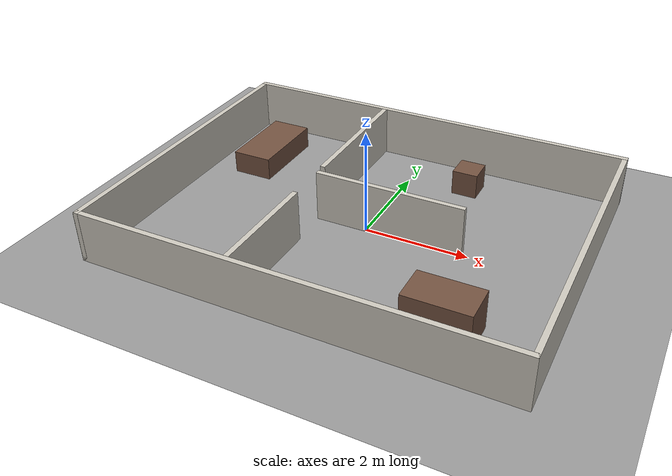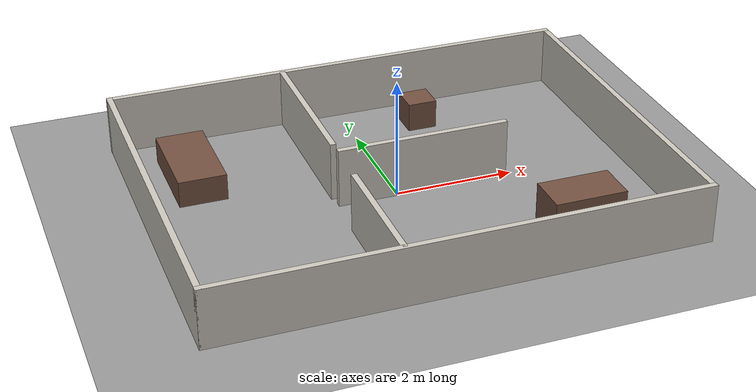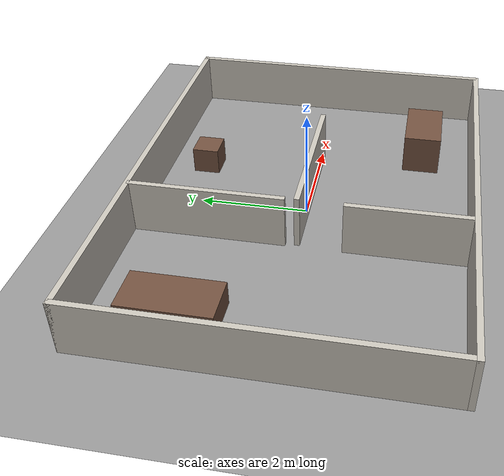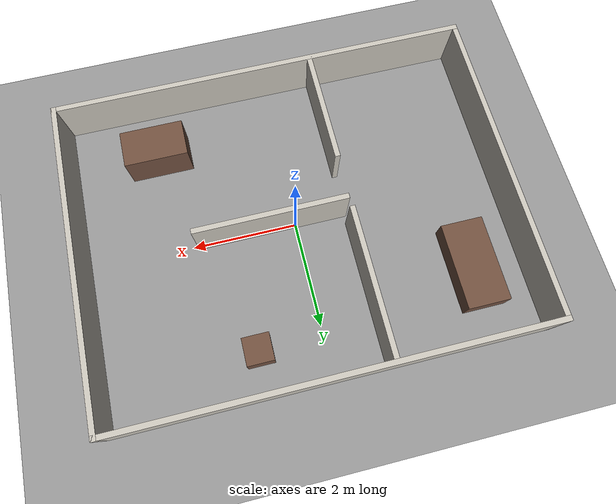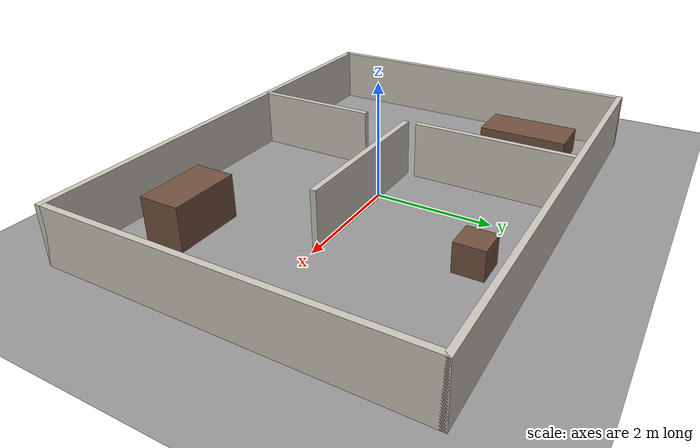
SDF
<?xml version="1.0"?>
<!-- A small two-room apartment, big enough that SLAM has to close a loop.
     Robot spawns in the lower-left room; the doorway is at about (-1, -0.3). -->
<sdf version="1.9">
  <world name="house">
    <physics name="4ms" type="ignored">
      <max_step_size>0.004</max_step_size>
      <real_time_factor>1.0</real_time_factor>
    </physics>
    <plugin filename="gz-sim-physics-system" name="gz::sim::systems::Physics"/>
    <plugin filename="gz-sim-user-commands-system" name="gz::sim::systems::UserCommands"/>
    <plugin filename="gz-sim-scene-broadcaster-system" name="gz::sim::systems::SceneBroadcaster"/>
    <plugin filename="gz-sim-sensors-system" name="gz::sim::systems::Sensors">
      <render_engine>ogre2</render_engine>
    </plugin>
    <plugin filename="gz-sim-imu-system" name="gz::sim::systems::Imu"/>

    <light type="directional" name="sun">
      <cast_shadows>true</cast_shadows>
      <pose>0 0 10 0 0 0</pose>
      <diffuse>0.9 0.9 0.9 1</diffuse>
      <specular>0.2 0.2 0.2 1</specular>
      <direction>-0.5 0.3 -0.9</direction>
    </light>

    <model name="floor">
      <static>true</static>
      <link name="link">
        <collision name="c"><geometry><plane><normal>0 0 1</normal><size>20 20</size></plane></geometry></collision>
        <visual name="v">
          <geometry><plane><normal>0 0 1</normal><size>20 20</size></plane></geometry>
          <material><ambient>0.5 0.5 0.5 1</ambient><diffuse>0.6 0.6 0.6 1</diffuse></material>
        </visual>
      </link>
    </model>

    <model name="house">
      <static>true</static>
      <link name="wall_s">
        <pose>0.0 -3.0 0.500 0 0 0</pose>
        <collision name="c"><geometry><box><size>8.1 0.1 1.0</size></box></geometry></collision>
        <visual name="v">
          <geometry><box><size>8.1 0.1 1.0</size></box></geometry>
          <material><ambient>0.8 0.78 0.74 1</ambient><diffuse>0.8 0.78 0.74 1</diffuse></material>
        </visual>
      </link>
      <link name="wall_n">
        <pose>0.0 3.0 0.500 0 0 0</pose>
        <collision name="c"><geometry><box><size>8.1 0.1 1.0</size></box></geometry></collision>
        <visual name="v">
          <geometry><box><size>8.1 0.1 1.0</size></box></geometry>
          <material><ambient>0.8 0.78 0.74 1</ambient><diffuse>0.8 0.78 0.74 1</diffuse></material>
        </visual>
      </link>
      <link name="wall_w">
        <pose>-4.0 0.0 0.500 0 0 0</pose>
        <collision name="c"><geometry><box><size>0.1 6.1 1.0</size></box></geometry></collision>
        <visual name="v">
          <geometry><box><size>0.1 6.1 1.0</size></box></geometry>
          <material><ambient>0.8 0.78 0.74 1</ambient><diffuse>0.8 0.78 0.74 1</diffuse></material>
        </visual>
      </link>
      <link name="wall_e">
        <pose>4.0 0.0 0.500 0 0 0</pose>
        <collision name="c"><geometry><box><size>0.1 6.1 1.0</size></box></geometry></collision>
        <visual name="v">
          <geometry><box><size>0.1 6.1 1.0</size></box></geometry>
          <material><ambient>0.8 0.78 0.74 1</ambient><diffuse>0.8 0.78 0.74 1</diffuse></material>
        </visual>
      </link>
      <link name="wall_hall_lower">
        <pose>-1.0 -1.9 0.500 0 0 0</pose>
        <collision name="c"><geometry><box><size>0.1 2.2 1.0</size></box></geometry></collision>
        <visual name="v">
          <geometry><box><size>0.1 2.2 1.0</size></box></geometry>
          <material><ambient>0.8 0.78 0.74 1</ambient><diffuse>0.8 0.78 0.74 1</diffuse></material>
        </visual>
      </link>
      <link name="wall_hall_upper">
        <pose>-1.0 1.6 0.500 0 0 0</pose>
        <collision name="c"><geometry><box><size>0.1 2.8 1.0</size></box></geometry></collision>
        <visual name="v">
          <geometry><box><size>0.1 2.8 1.0</size></box></geometry>
          <material><ambient>0.8 0.78 0.74 1</ambient><diffuse>0.8 0.78 0.74 1</diffuse></material>
        </visual>
      </link>
      <link name="wall_divider">
        <pose>0.45 0.0 0.500 0 0 0</pose>
        <collision name="c"><geometry><box><size>2.9 0.1 1.0</size></box></geometry></collision>
        <visual name="v">
          <geometry><box><size>2.9 0.1 1.0</size></box></geometry>
          <material><ambient>0.8 0.78 0.74 1</ambient><diffuse>0.8 0.78 0.74 1</diffuse></material>
        </visual>
      </link>
      <link name="table">
        <pose>2.3 -2.0 0.375 0 0 0</pose>
        <collision name="c"><geometry><box><size>1.2 0.7 0.75</size></box></geometry></collision>
        <visual name="v">
          <geometry><box><size>1.2 0.7 0.75</size></box></geometry>
          <material><ambient>0.45 0.32 0.25 1</ambient><diffuse>0.45 0.32 0.25 1</diffuse></material>
        </visual>
      </link>
      <link name="sofa">
        <pose>-3.0 1.6 0.225 0 0 0</pose>
        <collision name="c"><geometry><box><size>0.8 1.6 0.45</size></box></geometry></collision>
        <visual name="v">
          <geometry><box><size>0.8 1.6 0.45</size></box></geometry>
          <material><ambient>0.45 0.32 0.25 1</ambient><diffuse>0.45 0.32 0.25 1</diffuse></material>
        </visual>
      </link>
      <link name="box">
        <pose>1.2 2.2 0.250 0 0 0</pose>
        <collision name="c"><geometry><box><size>0.5 0.5 0.5</size></box></geometry></collision>
        <visual name="v">
          <geometry><box><size>0.5 0.5 0.5</size></box></geometry>
          <material><ambient>0.45 0.32 0.25 1</ambient><diffuse>0.45 0.32 0.25 1</diffuse></material>
        </visual>
      </link>
    </model>
  </world>
</sdf>
